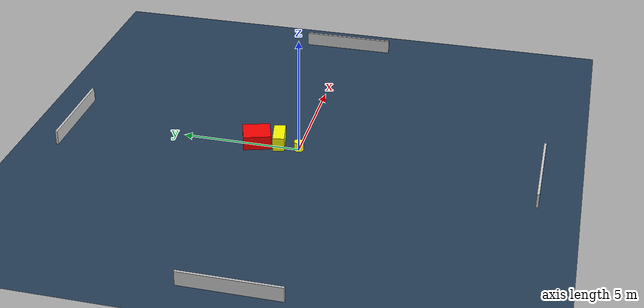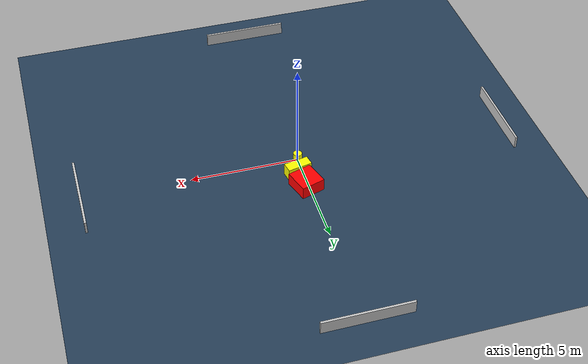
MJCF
<?xml version="1.0" ?>
<mujoco model="generated_environment">
  <option timestep="0.01" integrator="RK4" cone="elliptic"/>
  <default>
    <geom density="1"/>
  </default>
  <asset>
    <texture builtin="gradient" height="3072" name="skybox" rgb1="0.3 0.5 0.7" rgb2="0 0 0" type="skybox" width="512"/>
    <texture builtin="checker" height="300" name="groundplane" rgb1="0.2 0.3 0.4" rgb2="0.1 0.2 0.3" type="2d" width="300"/>
    <material name="groundplane" reflectance="0.2" texrepeat="5 5" texture="groundplane"/>
  </asset>
  <worldbody>
    <light dir="0 0 -1" directional="true" pos="0 0 1.5"/>
    <geom condim="3" friction="0.5 0.005 0.001" material="groundplane" name="floor" pos="0 0 0" size="0 0 0.05" type="plane"/>
    <body name="walls">
      <geom name="wall_1" condim="4" pos="-10.0 0.0 0.3" rgba="0.800000011920929 0.800000011920929 0.800000011920929 1.0" size="0.05 2.0 0.3" type="box"/>
      <geom name="wall_2" condim="4" pos="10.0 0.0 0.3" rgba="0.800000011920929 0.800000011920929 0.800000011920929 1.0" size="0.05 2.0 0.3" type="box"/>
      <geom name="wall_3" condim="4" pos="0.0 -10.0 0.3" rgba="0.800000011920929 0.800000011920929 0.800000011920929 1.0" size="2.0 0.05 0.3" type="box"/>
      <geom name="wall_4" condim="4" pos="0.0 10.0 0.3" rgba="0.800000011920929 0.800000011920929 0.800000011920929 1.0" size="2.0 0.05 0.3" type="box"/>
    </body>
    <body name="robot">
      <joint name="joint_x" type="slide" pos="0 0 0" axis="1 0 0"/>
      <joint name="joint_y" type="slide" pos="0 0 0" axis="0 1 0"/>
      <geom name="robot" type="cylinder" pos="0.0 0.0 0.2" size="0.2 0.2 0.0" mass="5.0" friction="1.0 0.005 0.0001" condim="4" rgba="1.0 1.0 0.0 1.0"/>
    </body>
    <body name="obstacle_1_movable">
      <geom name="obstacle_1_movable" condim="4" pos="0.2447209478605772 0.90710844060619 0.3" euler="0 0 190.9220968132061" friction="0.0 0.005 0.001" rgba="1.0 1.0 0.0 1.0" size="0.5747485125278646 0.24691582899767006 0.3" type="box" mass="0.1"/>
      <joint type="free"/>
    </body>
    <body name="obstacle_2_static">
      <geom name="obstacle_2_static" condim="4" pos="0.1292136868114622 1.8534190972445048 0.3" euler="0 0 17.468478406497866" friction="0.0 0.005 0.001" rgba="1.0 0.0 0.0 1.0" size="0.5589205549592102 0.5826155660444702 0.3" type="box"/>
    </body>
  </worldbody>
  <actuator>
    <motor name="actuator_x" joint="joint_x" gear="1" ctrlrange="-1 1"/>
    <motor name="actuator_y" joint="joint_y" gear="1" ctrlrange="-1 1"/>
  </actuator>
</mujoco>
